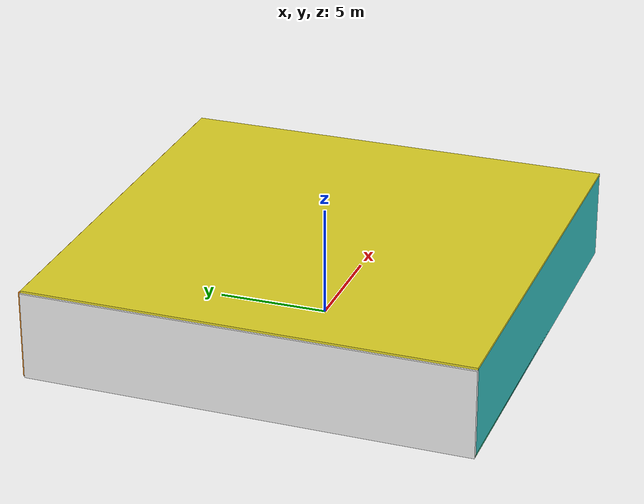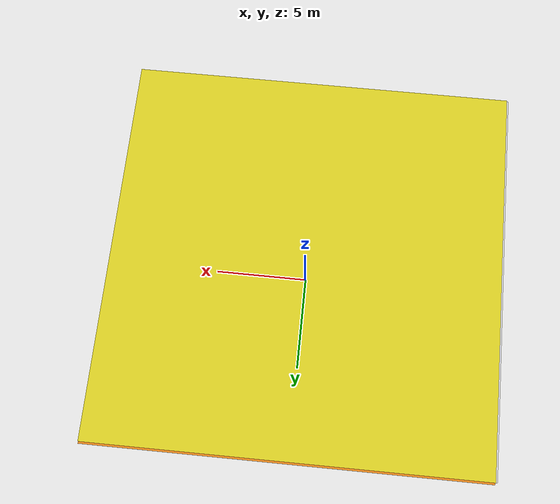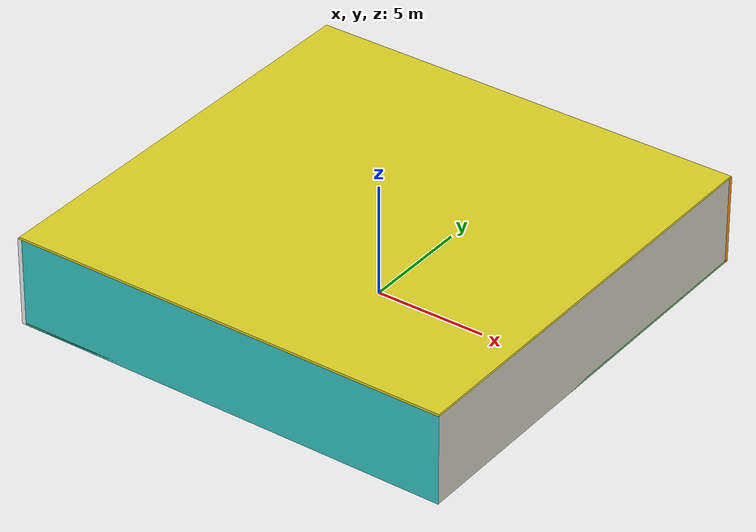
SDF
<sdf version="1.4">
 <world name="default">
  <physics type="ode">
   <max_step_size>0.001</max_step_size>
   <real_time_factor>1</real_time_factor>
   <real_time_update_rate>1000</real_time_update_rate>
   <gravity>0 0 -9.8</gravity>
  </physics>
  <scene><ambient>0.4 0.4 0.4 1</ambient><background>0.7 0.7 0.7 1</background><shadows>1</shadows></scene>
  <model name="Surrounding">
   <static>1</static>
   <link name="Ceiling">
    <collision name="Ceiling_Collision"><geometry><box><size>20 20 0.1</size></box></geometry></collision>
    <visual name="Ceiling_Visual">
     <geometry><box><size>20 20 0.1</size></box></geometry>
     <material>
      <script><uri>file://media/materials/scripts/gazebo.material</uri><name>Gazebo/Yellow</name></script>
     </material>
    </visual>
    <pose>0 0 4.05 0 0 0</pose>
   </link>
   <link name="Wall_South">
    <collision name="Wall_South_Collision">
     <geometry><box><size>20 0 4</size></box></geometry>
     <pose>0 0 2 0 -0 0</pose>
    </collision>
    <visual name="Wall_South_Visual">
     <pose>0 0 2 0 -0 0</pose>
     <geometry><box><size>20 0 4</size></box></geometry>
     <material>
      <script><uri>file://media/materials/scripts/gazebo.material</uri><name>Gazebo/Turquoise</name></script>
     </material>
    </visual>
    <velocity_decay><linear>0</linear><angular>0</angular></velocity_decay>
    <pose>0 -10 0 0 -0 0</pose>
   </link>
   <link name="Wall_East">
    <collision name="Wall_21_Collision">
     <geometry><box><size>20 0 4</size></box></geometry>
     <pose>0 0 2 0 -0 0</pose>
    </collision>
    <visual name="Wall_21_Visual">
     <pose>0 0 2 0 -0 0</pose>
     <geometry><box><size>20 0 4</size></box></geometry>
     <material>
      <script><uri>file://media/materials/scripts/gazebo.material</uri><name>Gazebo/PaintedWall</name></script>
     </material>
    </visual>
    <velocity_decay><linear>0</linear><angular>0</angular></velocity_decay>
    <pose>10 0 0 0 -0 1.5708</pose>
   </link>
   <link name="Wall_North">
    <collision name="Wall_22_Collision">
     <geometry><box><size>20 0.2 4</size></box></geometry>
     <pose>0 0 2 0 -0 0</pose>
    </collision>
    <visual name="Wall_22_Visual">
     <pose>0 0 2 0 -0 0</pose>
     <geometry><box><size>20 0.2 4</size></box></geometry>
     <material>
      <script><uri>file://media/materials/scripts/gazebo.material</uri><name>Gazebo/Orange</name></script>
     </material>
    </visual>
    <velocity_decay><linear>0</linear><angular>0</angular></velocity_decay>
    <pose>0 10 0 0 -0 0</pose>
   </link>
   <link name="Wall_West">
    <collision name="Wall_23_Collision">
     <geometry><box><size>20 0.2 4</size></box></geometry>
     <pose>0 0 2 0 -0 0</pose>
    </collision>
    <visual name="Wall_23_Visual">
     <pose>0 0 2 0 -0 0</pose>
     <geometry><box><size>20 0.2 4</size></box></geometry>
     <material>
      <script><uri>file://media/materials/scripts/gazebo.material</uri><name>Gazebo/WhiteGlow</name></script>
     </material>
    </visual>
    <velocity_decay><linear>0</linear><angular>0</angular></velocity_decay>
    <pose>-10 0 0 0 0 -1.5708</pose>
   </link>
   <link name="Ground_link">
    <collision name="collision">
     <pose>0 0 .05 0 -0 0</pose>
     <geometry><box><size>20 20 0.1</size></box></geometry>
    </collision>
    <visual name="visual">
     <pose>0 0 .05 0 -0 0</pose>
     <geometry><box><size>20 20 0.1</size></box></geometry>
     <material>
      <script><uri>file://media/materials/scripts/gazebo.material</uri><name>Gazebo/GreenTransparent</name></script>
     </material>
    </visual>
   </link>
   <static>1</static>
  </model>
  <spherical_coordinates>
   <surface_model>EARTH_WGS84</surface_model>
   <latitude_deg>0</latitude_deg>
   <longitude_deg>0</longitude_deg>
   <elevation>0</elevation>
   <heading_deg>0</heading_deg>
  </spherical_coordinates>
  <light name="lightball_0" type="diffuse">
   <diffuse>0.8 0.8 0.8 1</diffuse>
   <specular>0.2 0.2 0.2 1</specular>
   <attenuation>
    <range>100</range>
    <constant>0.7</constant>
    <linear>0.01</linear>
    <quadratic>0.001</quadratic>
   </attenuation>
   <direction>-0.5 0.1 -0.9</direction>
   <pose>2.52159575066 -2.22863697391 0.681354600076 0 0 0</pose>
  </light>
  <light name="lightball_1" type="diffuse">
   <diffuse>0.8 0.8 0.8 1</diffuse>
   <specular>0.2 0.2 0.2 1</specular>
   <attenuation>
    <range>100</range>
    <constant>0.7</constant>
    <linear>0.01</linear>
    <quadratic>0.001</quadratic>
   </attenuation>
   <direction>-0.5 0.1 -0.9</direction>
   <pose>-3.27164005953 -0.140910952053 0.745844272879 0 0 0</pose>
  </light>
  <light name="lightball_2" type="diffuse">
   <diffuse>0.8 0.8 0.8 1</diffuse>
   <specular>0.2 0.2 0.2 1</specular>
   <attenuation>
    <range>100</range>
    <constant>0.7</constant>
    <linear>0.01</linear>
    <quadratic>0.001</quadratic>
   </attenuation>
   <direction>-0.5 0.1 -0.9</direction>
   <pose>3.57994289008 8.49179460148 2.19819350495 0 0 0</pose>
  </light>
  <light name="lightball_3" type="diffuse">
   <diffuse>0.8 0.8 0.8 1</diffuse>
   <specular>0.2 0.2 0.2 1</specular>
   <attenuation>
    <range>100</range>
    <constant>0.7</constant>
    <linear>0.01</linear>
    <quadratic>0.001</quadratic>
   </attenuation>
   <direction>-0.5 0.1 -0.9</direction>
   <pose>2.03526207407 -8.51052222286 2.20211269848 0 0 0</pose>
  </light>
  <include><uri>model://cabinet</uri><pose>-1.846091041 6.96252666286 0 0 0 1.51756633673</pose></include>
  <include><uri>model://table</uri><pose>4.34871608669 -5.01373903201 0 0 0 1.29023553475</pose></include>
  <include><uri>model://cabinet</uri><pose>3.95281064256 -2.13973724045 0 0 0 2.13800417441</pose></include>
  <include>
   <uri>model://construction_cone</uri>
   <pose>3.96819523434 1.0415929703 0 0 0 2.083720959</pose>
  </include>
 </world>
</sdf>

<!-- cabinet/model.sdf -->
<sdf version="1.5">
  <model name="cabinet">
    <static>true</static>
    <link name="cabinet_bottom_plate">
      <inertial>
        <pose>0 0 -1 0 0 0</pose>
        <inertia>
          <ixx>2.050000</ixx>
          <ixy>0</ixy>
          <ixz>0</ixz>
          <iyy>2.050000</iyy>
          <iyz>0</iyz>
          <izz>2.050000</izz>
        </inertia>
        <mass>25.000000</mass>
      </inertial>
      <collision name="cabinet_bottom_plate_geom">
        <pose>0 0 0.010000 0 0 0</pose>
        <geometry>
          <box>
            <size>0.450000 0.450000 0.020000</size>
          </box>
        </geometry>
      </collision>
      <visual name="cabinet_bottom_plate_geom_visual">
        <pose>0 0 0.010000 0 0 0</pose>
        <geometry>
          <box>
            <size>0.450000 0.450000 0.020000</size>
          </box>
        </geometry>
        <material>
          <script>
            <uri>model://media/materials/scripts/gazebo.material</uri>
            <name>Gazebo/Wood</name>
          </script>
        </material>
      </visual>
      <collision name="cabinet_bottom_plate_geom_cabinet_back_plate">
        <pose>0.235000 0 0.510000 0 0 0</pose>
        <geometry>
          <box>
            <size>0.020000 0.450000 1.020000</size>
          </box>
        </geometry>
      </collision>
      <visual name="cabinet_bottom_plate_geom_cabinet_back_plate_visual">
        <pose>0.235000 0 0.510000 0 0 0</pose>
        <geometry>
          <box>
            <size>0.020000 0.450000 1.020000</size>
          </box>
        </geometry>
        <material>
          <script>
            <uri>model://media/materials/scripts/gazebo.material</uri>
            <name>Gazebo/Wood</name>
          </script>
        </material>
      </visual>
      <collision name="cabinet_bottom_plate_geom_cabinet_left_plate">
        <pose>0 0.235000 0.510000 0 0 0</pose>
        <geometry>
          <box>
            <size>0.450000 0.020000 1.020000</size>
          </box>
        </geometry>
      </collision>
      <visual name="cabinet_bottom_plate_geom_cabinet_left_plate_visual">
        <pose>0 0.235000 0.510000 0 0 0</pose>
        <geometry>
          <box>
            <size>0.450000 0.020000 1.020000</size>
          </box>
        </geometry>
        <material>
          <script>
            <uri>model://media/materials/scripts/gazebo.material</uri>
            <name>Gazebo/Wood</name>
          </script>
        </material>
      </visual>
      <collision name="cabinet_bottom_plate_geom_cabinet_middle_plate">
        <pose>0 0 0.510000 0 0 0</pose>
        <geometry>
          <box>
            <size>0.450000 0.450000 0.020000</size>
          </box>
        </geometry>
      </collision>
      <visual name="cabinet_bottom_plate_geom_cabinet_middle_plate_visual">
        <pose>0 0 0.510000 0 0 0</pose>
        <geometry>
          <box>
            <size>0.450000 0.450000 0.020000</size>
          </box>
        </geometry>
        <material>
          <script>
            <uri>model://media/materials/scripts/gazebo.material</uri>
            <name>Gazebo/Wood</name>
          </script>
        </material>
      </visual>
      <collision name="cabinet_bottom_plate_geom_cabinet_right_plate">
        <pose>0 -0.235000 0.510000 0 0 0</pose>
        <geometry>
          <box>
            <size>0.450000 0.020000 1.020000</size>
          </box>
        </geometry>
      </collision>
      <visual name="cabinet_bottom_plate_geom_cabinet_right_plate_visual">
        <pose>0 -0.235000 0.510000 0 0 0</pose>
        <geometry>
          <box>
            <size>0.450000 0.020000 1.020000</size>
          </box>
        </geometry>
        <material>
          <script>
            <uri>model://media/materials/scripts/gazebo.material</uri>
            <name>Gazebo/Wood</name>
          </script>
        </material>
      </visual>
      <collision name="cabinet_bottom_plate_geom_cabinet_top_plate">
        <pose>0 0 1.010000 0 0 0</pose>
        <geometry>
          <box>
            <size>0.450000 0.450000 0.020000</size>
          </box>
        </geometry>
      </collision>
      <visual name="cabinet_bottom_plate_geom_cabinet_top_plate_visual">
        <pose>0 0 1.010000 0 0 0</pose>
        <geometry>
          <box>
            <size>0.450000 0.450000 0.020000</size>
          </box>
        </geometry>
        <material>
          <script>
            <uri>model://media/materials/scripts/gazebo.material</uri>
            <name>Gazebo/Wood</name>
          </script>
        </material>
      </visual>
    </link>
  </model>
</sdf>

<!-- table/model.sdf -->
<sdf version="1.5">
  <model name="table">
    <static>true</static>
    <link name="link">
      <collision name="surface">
        <pose>0 0 1.0 0 0 0</pose>
        <geometry>
          <box>
            <size>1.5 0.8 0.03</size>
          </box>
        </geometry>
        <surface>
          <friction>
            <ode>
              <mu>0.6</mu>
              <mu2>0.6</mu2>
            </ode>
          </friction>
        </surface>
      </collision>
      <visual name="visual1">
        <pose>0 0 1.0 0 0 0</pose>
        <geometry>
          <box>
            <size>1.5 0.8 0.03</size>
          </box>
        </geometry>
        <material>
          <script>
            <uri>model://media/materials/scripts/gazebo.material</uri>
            <name>Gazebo/Wood</name>
          </script>
        </material>
      </visual>
      <collision name="front_left_leg">
        <pose>0.68 0.38 0.5 0 0 0</pose>
        <geometry>
          <cylinder>
            <radius>0.02</radius>
            <length>1.0</length>
          </cylinder>
        </geometry>
      </collision>
      <visual name="front_left_leg">
        <pose>0.68 0.38 0.5 0 0 0</pose>
        <geometry>
          <cylinder>
            <radius>0.02</radius>
            <length>1.0</length>
          </cylinder>
        </geometry>
        <material>
          <script>
            <uri>model://media/materials/scripts/gazebo.material</uri>
            <name>Gazebo/Grey</name>
          </script>
        </material>
      </visual>
      <collision name="front_right_leg">
        <pose>0.68 -0.38 0.5 0 0 0</pose>
        <geometry>
          <cylinder>
            <radius>0.02</radius>
            <length>1.0</length>
          </cylinder>
        </geometry>
      </collision>
      <visual name="front_right_leg">
        <pose>0.68 -0.38 0.5 0 0 0</pose>
        <geometry>
          <cylinder>
            <radius>0.02</radius>
            <length>1.0</length>
          </cylinder>
        </geometry>
        <material>
          <script>
            <uri>model://media/materials/scripts/gazebo.material</uri>
            <name>Gazebo/Grey</name>
          </script>
        </material>
      </visual>
      <collision name="back_right_leg">
        <pose>-0.68 -0.38 0.5 0 0 0</pose>
        <geometry>
          <cylinder>
            <radius>0.02</radius>
            <length>1.0</length>
          </cylinder>
        </geometry>
      </collision>
      <visual name="back_right_leg">
        <pose>-0.68 -0.38 0.5 0 0 0</pose>
        <geometry>
          <cylinder>
            <radius>0.02</radius>
            <length>1.0</length>
          </cylinder>
        </geometry>
        <material>
          <script>
            <uri>model://media/materials/scripts/gazebo.material</uri>
            <name>Gazebo/Grey</name>
          </script>
        </material>
      </visual>
      <collision name="back_left_leg">
        <pose>-0.68 0.38 0.5 0 0 0</pose>
        <geometry>
          <cylinder>
            <radius>0.02</radius>
            <length>1.0</length>
          </cylinder>
        </geometry>
      </collision>
      <visual name="back_left_leg">
        <pose>-0.68 0.38 0.5 0 0 0</pose>
        <geometry>
          <cylinder>
            <radius>0.02</radius>
            <length>1.0</length>
          </cylinder>
        </geometry>
        <material>
          <script>
            <uri>model://media/materials/scripts/gazebo.material</uri>
            <name>Gazebo/Grey</name>
          </script>
        </material>
      </visual>
    </link>
  </model>
</sdf>

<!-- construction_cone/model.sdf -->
<sdf version="1.5">
  <model name="Construction Cone">
    <link name="link">
      <collision name="collision">
        <geometry>
          <mesh>
            <scale>10 10 10</scale>
            <uri>file://isr-testbed/construction_cone/meshes/construction_cone.dae</uri>
          </mesh>
        </geometry>
      </collision>
      <visual name="visual">
        <geometry>
          <mesh>
            <scale>10 10 10</scale>
            <uri>file://isr-testbed/construction_cone/meshes/construction_cone.dae</uri>
          </mesh>
        </geometry>
      </visual>
    </link>
  </model>
</sdf>
